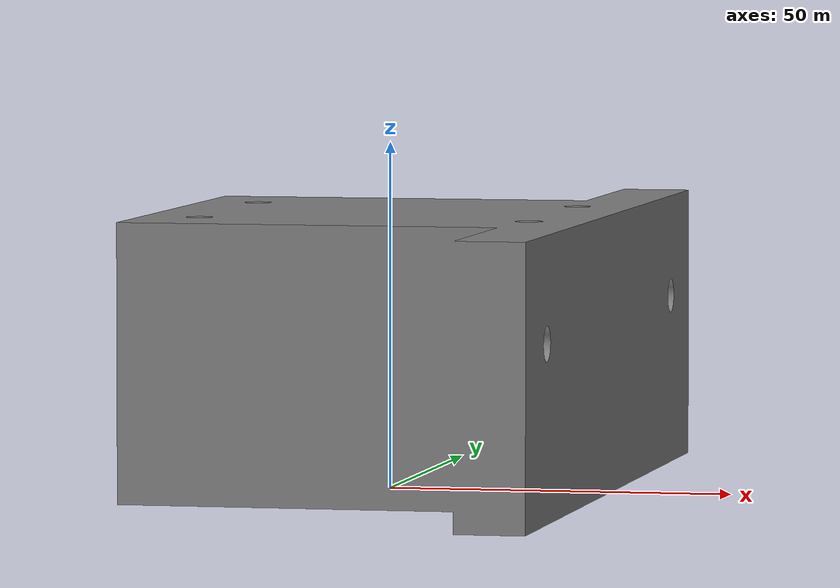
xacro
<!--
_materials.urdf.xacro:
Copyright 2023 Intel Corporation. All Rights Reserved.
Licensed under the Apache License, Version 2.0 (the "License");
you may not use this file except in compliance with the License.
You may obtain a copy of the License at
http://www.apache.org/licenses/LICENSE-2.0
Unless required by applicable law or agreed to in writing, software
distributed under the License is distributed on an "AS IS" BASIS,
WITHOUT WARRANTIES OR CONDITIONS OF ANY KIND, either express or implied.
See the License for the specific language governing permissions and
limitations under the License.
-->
<?xml version="1.0"?>

<robot name="basement_test" xmlns:xacro="http://www.ros.org/wiki/xacro">
  <!-- define args to allow change them when starting -->
  <xacro:arg name="scale" default="1 1 1"/>

  <!-- connect macros -->
  <xacro:include filename="$(find base_description)/urdf/_basement.urdf.xacro"/>

  <link name="base_link"/>

  <xacro:basement parent="base_link"
                  scale="$(arg scale)">
    <origin xyz="0 0 0" rpy="0 0 0"/>
  </xacro:basement>

</robot>

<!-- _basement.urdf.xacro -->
<robot xmlns:xacro="http://www.ros.org/wiki/xacro" name="basement_model">
  <xacro:include filename="$(find base_description)/urdf/_materials.urdf.xacro"/>

  <!--
      Macros for box insertion.
      Parameters:
      parent  - if necessery
      *origin - pos/orientation
      name    - name
      scale   - control STL
  -->

  <xacro:macro name="basement" params="parent
              *origin name:=cheburashka
              scale:='1 1 1'">

      <!-- connection with parents -->
      <joint name="${name}_joint" type="fixed">
          <xacro:insert_block name="origin"/>
          <parent link="${parent}"/>
          <child link="${name}_link"/>
      </joint>

      <link name="${name}_link">
          <inertial>
              <origin xyz="0.0 0.0 0.0" rpy="0.0 0.0 0.0"/>
              <mass value="1.0"/>
              <inertia ixx="0.01" ixy="0.0" ixz="0.0" iyy="0.01" iyz="0.0" izz="0.01"/>
          </inertial>
          <visual>
              <origin xyz="0.0 0.0 0.0" rpy="0.0 0.0 0.0"/>
              <geometry>
                  <mesh filename="file://$(find base_description)/meshes/base.stl" scale="${scale}" />
              </geometry>
              <material name="aluminum"/>
          </visual>
          <collision>
              <origin xyz="0.0 0.0 0.0" rpy="0.0 0.0 0.0"/>
              <geometry>
                  <mesh filename="file://$(find base_description)/meshes/base.stl" scale="${scale}" />
              </geometry>
          </collision>
      </link>
  </xacro:macro>
</robot>

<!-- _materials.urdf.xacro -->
<!--
Collection of materials to be used in other macros.
This avoids the redefinition of materials in case multple cameras are imported.
-->

<robot xmlns:xacro="http://ros.org/wiki/xacro">
  <xacro:property name="realsense_materials_defined" default="false" />
  <xacro:unless value="${realsense_materials_defined}">
    <xacro:property name="realsense_materials_defined" value="true" />
    <material name="aluminum">
      <color rgba="0.5 0.5 0.5 1"/>
    </material>
    <material name="plastic">
      <color rgba="0.1 0.1 0.1 1"/>
    </material>
    <material name="green">
      <color rgba="0.0 1.0 0.0 1"/>
    </material>
 </xacro:unless>
</robot>
